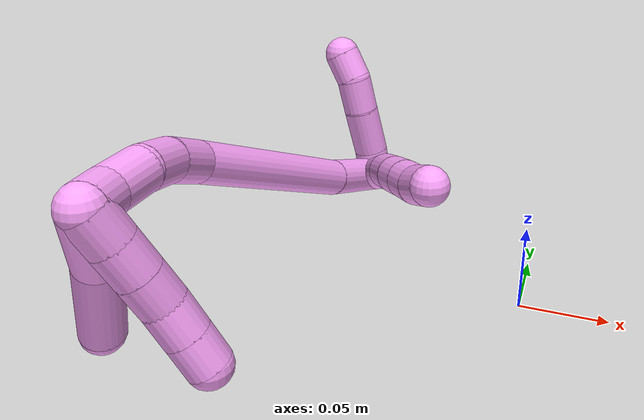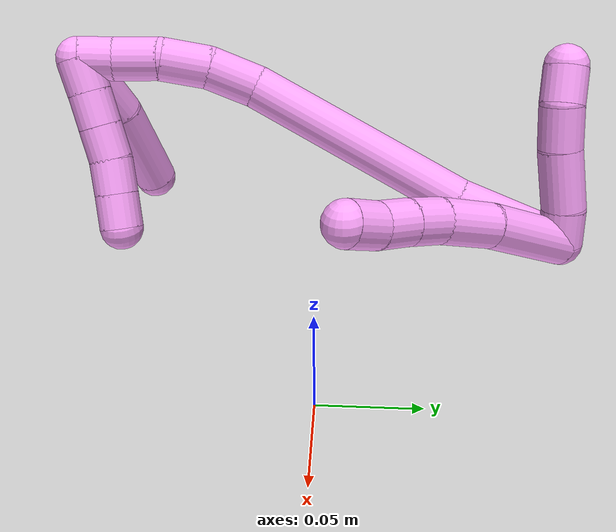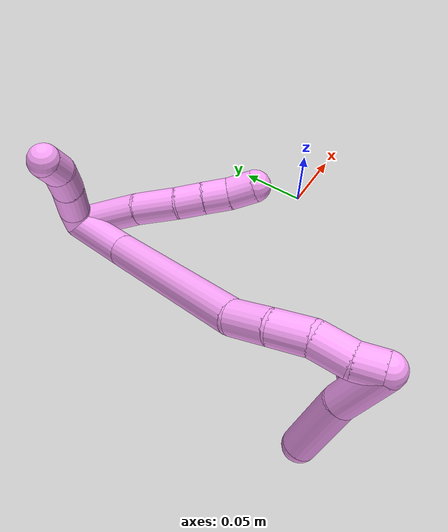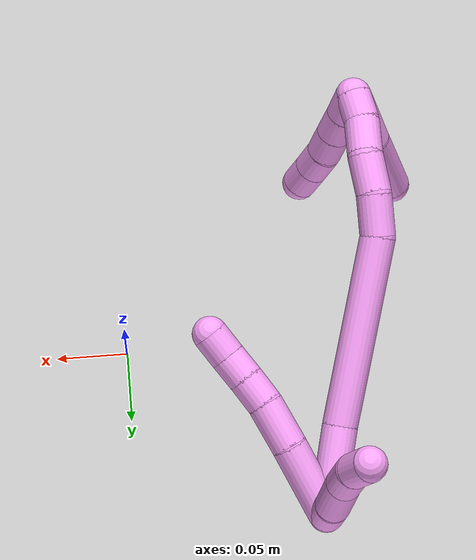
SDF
<sdf version="1.7">
 <world name="default">
  <model name="4">
   <static>0</static>
   <link name="4">
    <collision name="collision-cylinder-e_1_2_8">
     <pose>0.006279 -0.02337 0.012584 1.07684 0.232285 0.139143</pose>
     <geometry><cylinder><radius>0.0125</radius><length>0.05455</length></cylinder></geometry>
     <surface>
      <friction><ode><mu>1.16</mu><mu2>1.16</mu2><slip1>0</slip1><slip2>0</slip2></ode></friction>
      <contact><ode><kp>1e+06</kp><kd>1</kd><max_vel>0</max_vel><min_depth>0.001</min_depth></ode></contact>
     </surface>
    </collision>
    <visual name="visual-cylinder-e_1_2_8">
     <pose>0.006279 -0.02337 0.012584 1.07684 0.232285 0.139143</pose>
     <geometry><cylinder><radius>0.0125</radius><length>0.05455</length></cylinder></geometry>
     <material><ambient>1 0.65098 0.996078 1</ambient></material>
    </visual>
    <collision name="collision-cylinder-e_2_8_9">
     <pose>0.016654 -0.062086 0.031181 1.19739 0.243571 0.166609</pose>
     <geometry><cylinder><radius>0.0125</radius><length>0.033968</length></cylinder></geometry>
     <surface>
      <friction><ode><mu>1.16</mu><mu2>1.16</mu2><slip1>0</slip1><slip2>0</slip2></ode></friction>
      <contact><ode><kp>1e+06</kp><kd>1</kd><max_vel>0</max_vel><min_depth>0.001</min_depth></ode></contact>
     </surface>
    </collision>
    <visual name="visual-cylinder-e_2_8_9">
     <pose>0.016654 -0.062086 0.031181 1.19739 0.243571 0.166609</pose>
     <geometry><cylinder><radius>0.0125</radius><length>0.033968</length></cylinder></geometry>
     <material><ambient>1 0.65098 0.996078 1</ambient></material>
    </visual>
    <collision name="collision-cylinder-e_3_9_10">
     <pose>0.024607 -0.08686 0.040261 1.25619 0.371079 0.270942</pose>
     <geometry><cylinder><radius>0.0125</radius><length>0.021275</length></cylinder></geometry>
     <surface>
      <friction><ode><mu>1.16</mu><mu2>1.16</mu2><slip1>0</slip1><slip2>0</slip2></ode></friction>
      <contact><ode><kp>1e+06</kp><kd>1</kd><max_vel>0</max_vel><min_depth>0.001</min_depth></ode></contact>
     </surface>
    </collision>
    <visual name="visual-cylinder-e_3_9_10">
     <pose>0.024607 -0.08686 0.040261 1.25619 0.371079 0.270942</pose>
     <geometry><cylinder><radius>0.0125</radius><length>0.021275</length></cylinder></geometry>
     <material><ambient>1 0.65098 0.996078 1</ambient></material>
    </visual>
    <collision name="collision-cylinder-e_4_10_11">
     <pose>0.032291 -0.105216 0.045774 1.30352 0.39192 0.300632</pose>
     <geometry><cylinder><radius>0.0125</radius><length>0.020036</length></cylinder></geometry>
     <surface>
      <friction><ode><mu>1.16</mu><mu2>1.16</mu2><slip1>0</slip1><slip2>0</slip2></ode></friction>
      <contact><ode><kp>1e+06</kp><kd>1</kd><max_vel>0</max_vel><min_depth>0.001</min_depth></ode></contact>
     </surface>
    </collision>
    <visual name="visual-cylinder-e_4_10_11">
     <pose>0.032291 -0.105216 0.045774 1.30352 0.39192 0.300632</pose>
     <geometry><cylinder><radius>0.0125</radius><length>0.020036</length></cylinder></geometry>
     <material><ambient>1 0.65098 0.996078 1</ambient></material>
    </visual>
    <collision name="collision-cylinder-e_5_11_6">
     <pose>0.040013 -0.122572 0.052162 1.13313 0.396548 0.254237</pose>
     <geometry><cylinder><radius>0.0125</radius><length>0.020171</length></cylinder></geometry>
     <surface>
      <friction><ode><mu>1.16</mu><mu2>1.16</mu2><slip1>0</slip1><slip2>0</slip2></ode></friction>
      <contact><ode><kp>1e+06</kp><kd>1</kd><max_vel>0</max_vel><min_depth>0.001</min_depth></ode></contact>
     </surface>
    </collision>
    <visual name="visual-cylinder-e_5_11_6">
     <pose>0.040013 -0.122572 0.052162 1.13313 0.396548 0.254237</pose>
     <geometry><cylinder><radius>0.0125</radius><length>0.020171</length></cylinder></geometry>
     <material><ambient>1 0.65098 0.996078 1</ambient></material>
    </visual>
    <collision name="collision-cylinder-e_1_2_12">
     <pose>-0.001452 0.000924 0.010187 -0.090463 -0.141048 0.006395</pose>
     <geometry><cylinder><radius>0.0125</radius><length>0.020664</length></cylinder></geometry>
     <surface>
      <friction><ode><mu>1.16</mu><mu2>1.16</mu2><slip1>0</slip1><slip2>0</slip2></ode></friction>
      <contact><ode><kp>1e+06</kp><kd>1</kd><max_vel>0</max_vel><min_depth>0.001</min_depth></ode></contact>
     </surface>
    </collision>
    <visual name="visual-cylinder-e_1_2_12">
     <pose>-0.001452 0.000924 0.010187 -0.090463 -0.141048 0.006395</pose>
     <geometry><cylinder><radius>0.0125</radius><length>0.020664</length></cylinder></geometry>
     <material><ambient>1 0.65098 0.996078 1</ambient></material>
    </visual>
    <collision name="collision-cylinder-e_2_12_13">
     <pose>-0.006373 0.000906 0.037267 0.055709 -0.202171 -0.005652</pose>
     <geometry><cylinder><radius>0.0125</radius><length>0.034541</length></cylinder></geometry>
     <surface>
      <friction><ode><mu>1.16</mu><mu2>1.16</mu2><slip1>0</slip1><slip2>0</slip2></ode></friction>
      <contact><ode><kp>1e+06</kp><kd>1</kd><max_vel>0</max_vel><min_depth>0.001</min_depth></ode></contact>
     </surface>
    </collision>
    <visual name="visual-cylinder-e_2_12_13">
     <pose>-0.006373 0.000906 0.037267 0.055709 -0.202171 -0.005652</pose>
     <geometry><cylinder><radius>0.0125</radius><length>0.034541</length></cylinder></geometry>
     <material><ambient>1 0.65098 0.996078 1</ambient></material>
    </visual>
    <collision name="collision-cylinder-e_3_13_14">
     <pose>-0.012339 0.000562 0.066076 -0.050166 -0.206414 0.005197</pose>
     <geometry><cylinder><radius>0.0125</radius><length>0.02438</length></cylinder></geometry>
     <surface>
      <friction><ode><mu>1.16</mu><mu2>1.16</mu2><slip1>0</slip1><slip2>0</slip2></ode></friction>
      <contact><ode><kp>1e+06</kp><kd>1</kd><max_vel>0</max_vel><min_depth>0.001</min_depth></ode></contact>
     </surface>
    </collision>
    <visual name="visual-cylinder-e_3_13_14">
     <pose>-0.012339 0.000562 0.066076 -0.050166 -0.206414 0.005197</pose>
     <geometry><cylinder><radius>0.0125</radius><length>0.02438</length></cylinder></geometry>
     <material><ambient>1 0.65098 0.996078 1</ambient></material>
    </visual>
    <collision name="collision-cylinder-e_4_14_5">
     <pose>-0.019212 0.003497 0.086914 -0.256067 -0.442943 0.057958</pose>
     <geometry><cylinder><radius>0.0125</radius><length>0.020416</length></cylinder></geometry>
     <surface>
      <friction><ode><mu>1.16</mu><mu2>1.16</mu2><slip1>0</slip1><slip2>0</slip2></ode></friction>
      <contact><ode><kp>1e+06</kp><kd>1</kd><max_vel>0</max_vel><min_depth>0.001</min_depth></ode></contact>
     </surface>
    </collision>
    <visual name="visual-cylinder-e_4_14_5">
     <pose>-0.019212 0.003497 0.086914 -0.256067 -0.442943 0.057958</pose>
     <geometry><cylinder><radius>0.0125</radius><length>0.020416</length></cylinder></geometry>
     <material><ambient>1 0.65098 0.996078 1</ambient></material>
    </visual>
    <collision name="collision-cylinder-e_1_2_15">
     <pose>-0.01308 -0.026073 0.010687 1.18179 -0.434585 -0.294082</pose>
     <geometry><cylinder><radius>0.0125</radius><length>0.062132</length></cylinder></geometry>
     <surface>
      <friction><ode><mu>1.16</mu><mu2>1.16</mu2><slip1>0</slip1><slip2>0</slip2></ode></friction>
      <contact><ode><kp>1e+06</kp><kd>1</kd><max_vel>0</max_vel><min_depth>0.001</min_depth></ode></contact>
     </surface>
    </collision>
    <visual name="visual-cylinder-e_1_2_15">
     <pose>-0.01308 -0.026073 0.010687 1.18179 -0.434585 -0.294082</pose>
     <geometry><cylinder><radius>0.0125</radius><length>0.062132</length></cylinder></geometry>
     <material><ambient>1 0.65098 0.996078 1</ambient></material>
    </visual>
    <collision name="collision-cylinder-e_2_15_16">
     <pose>-0.055896 -0.104277 0.050851 1.05618 -0.460874 -0.272024</pose>
     <geometry><cylinder><radius>0.0125</radius><length>0.133728</length></cylinder></geometry>
     <surface>
      <friction><ode><mu>1.16</mu><mu2>1.16</mu2><slip1>0</slip1><slip2>0</slip2></ode></friction>
      <contact><ode><kp>1e+06</kp><kd>1</kd><max_vel>0</max_vel><min_depth>0.001</min_depth></ode></contact>
     </surface>
    </collision>
    <visual name="visual-cylinder-e_2_15_16">
     <pose>-0.055896 -0.104277 0.050851 1.05618 -0.460874 -0.272024</pose>
     <geometry><cylinder><radius>0.0125</radius><length>0.133728</length></cylinder></geometry>
     <material><ambient>1 0.65098 0.996078 1</ambient></material>
    </visual>
    <collision name="collision-cylinder-e_3_16_17">
     <pose>-0.088252 -0.16944 0.086752 1.11284 -0.178339 -0.111103</pose>
     <geometry><cylinder><radius>0.0125</radius><length>0.029527</length></cylinder></geometry>
     <surface>
      <friction><ode><mu>1.16</mu><mu2>1.16</mu2><slip1>0</slip1><slip2>0</slip2></ode></friction>
      <contact><ode><kp>1e+06</kp><kd>1</kd><max_vel>0</max_vel><min_depth>0.001</min_depth></ode></contact>
     </surface>
    </collision>
    <visual name="visual-cylinder-e_3_16_17">
     <pose>-0.088252 -0.16944 0.086752 1.11284 -0.178339 -0.111103</pose>
     <geometry><cylinder><radius>0.0125</radius><length>0.029527</length></cylinder></geometry>
     <material><ambient>1 0.65098 0.996078 1</ambient></material>
    </visual>
    <collision name="collision-cylinder-e_4_17_18">
     <pose>-0.092012 -0.195856 0.096881 1.30066 -0.081997 -0.062392</pose>
     <geometry><cylinder><radius>0.0125</radius><length>0.027867</length></cylinder></geometry>
     <surface>
      <friction><ode><mu>1.16</mu><mu2>1.16</mu2><slip1>0</slip1><slip2>0</slip2></ode></friction>
      <contact><ode><kp>1e+06</kp><kd>1</kd><max_vel>0</max_vel><min_depth>0.001</min_depth></ode></contact>
     </surface>
    </collision>
    <visual name="visual-cylinder-e_4_17_18">
     <pose>-0.092012 -0.195856 0.096881 1.30066 -0.081997 -0.062392</pose>
     <geometry><cylinder><radius>0.0125</radius><length>0.027867</length></cylinder></geometry>
     <material><ambient>1 0.65098 0.996078 1</ambient></material>
    </visual>
    <collision name="collision-cylinder-e_5_18_19">
     <pose>-0.096223 -0.222189 0.100954 1.54244 -0.232665 -0.226215</pose>
     <geometry><cylinder><radius>0.0125</radius><length>0.026628</length></cylinder></geometry>
     <surface>
      <friction><ode><mu>1.16</mu><mu2>1.16</mu2><slip1>0</slip1><slip2>0</slip2></ode></friction>
      <contact><ode><kp>1e+06</kp><kd>1</kd><max_vel>0</max_vel><min_depth>0.001</min_depth></ode></contact>
     </surface>
    </collision>
    <visual name="visual-cylinder-e_5_18_19">
     <pose>-0.096223 -0.222189 0.100954 1.54244 -0.232665 -0.226215</pose>
     <geometry><cylinder><radius>0.0125</radius><length>0.026628</length></cylinder></geometry>
     <material><ambient>1 0.65098 0.996078 1</ambient></material>
    </visual>
    <collision name="collision-cylinder-e_6_19_1">
     <pose>-0.099458 -0.245121 0.102549 1.44848 -0.016413 -0.014519</pose>
     <geometry><cylinder><radius>0.0125</radius><length>0.020118</length></cylinder></geometry>
     <surface>
      <friction><ode><mu>1.16</mu><mu2>1.16</mu2><slip1>0</slip1><slip2>0</slip2></ode></friction>
      <contact><ode><kp>1e+06</kp><kd>1</kd><max_vel>0</max_vel><min_depth>0.001</min_depth></ode></contact>
     </surface>
    </collision>
    <visual name="visual-cylinder-e_6_19_1">
     <pose>-0.099458 -0.245121 0.102549 1.44848 -0.016413 -0.014519</pose>
     <geometry><cylinder><radius>0.0125</radius><length>0.020118</length></cylinder></geometry>
     <material><ambient>1 0.65098 0.996078 1</ambient></material>
    </visual>
    <collision name="collision-cylinder-e_1_1_20">
     <pose>-0.104584 -0.245972 0.084278 -2.70358 -0.226472 0.944724</pose>
     <geometry><cylinder><radius>0.0125</radius><length>0.04419</length></cylinder></geometry>
     <surface>
      <friction><ode><mu>1.16</mu><mu2>1.16</mu2><slip1>0</slip1><slip2>0</slip2></ode></friction>
      <contact><ode><kp>1e+06</kp><kd>1</kd><max_vel>0</max_vel><min_depth>0.001</min_depth></ode></contact>
     </surface>
    </collision>
    <visual name="visual-cylinder-e_1_1_20">
     <pose>-0.104584 -0.245972 0.084278 -2.70358 -0.226472 0.944724</pose>
     <geometry><cylinder><radius>0.0125</radius><length>0.04419</length></cylinder></geometry>
     <material><ambient>1 0.65098 0.996078 1</ambient></material>
    </visual>
    <collision name="collision-cylinder-e_2_20_4">
     <pose>-0.116459 -0.229792 0.03868 -2.87784 -0.250364 1.51816</pose>
     <geometry><cylinder><radius>0.0125</radius><length>0.05581</length></cylinder></geometry>
     <surface>
      <friction><ode><mu>1.16</mu><mu2>1.16</mu2><slip1>0</slip1><slip2>0</slip2></ode></friction>
      <contact><ode><kp>1e+06</kp><kd>1</kd><max_vel>0</max_vel><min_depth>0.001</min_depth></ode></contact>
     </surface>
    </collision>
    <visual name="visual-cylinder-e_2_20_4">
     <pose>-0.116459 -0.229792 0.03868 -2.87784 -0.250364 1.51816</pose>
     <geometry><cylinder><radius>0.0125</radius><length>0.05581</length></cylinder></geometry>
     <material><ambient>1 0.65098 0.996078 1</ambient></material>
    </visual>
    <collision name="collision-cylinder-e_1_1_21">
     <pose>-0.095924 -0.25323 0.094676 -2.93852 0.378943 -2.16485</pose>
     <geometry><cylinder><radius>0.0125</radius><length>0.02</length></cylinder></geometry>
     <surface>
      <friction><ode><mu>1.16</mu><mu2>1.16</mu2><slip1>0</slip1><slip2>0</slip2></ode></friction>
      <contact><ode><kp>1e+06</kp><kd>1</kd><max_vel>0</max_vel><min_depth>0.001</min_depth></ode></contact>
     </surface>
    </collision>
    <visual name="visual-cylinder-e_1_1_21">
     <pose>-0.095924 -0.25323 0.094676 -2.93852 0.378943 -2.16485</pose>
     <geometry><cylinder><radius>0.0125</radius><length>0.02</length></cylinder></geometry>
     <material><ambient>1 0.65098 0.996078 1</ambient></material>
    </visual>
    <collision name="collision-cylinder-e_2_21_22">
     <pose>-0.088347 -0.249738 0.076502 -2.96508 0.39814 -2.31491</pose>
     <geometry><cylinder><radius>0.0125</radius><length>0.02</length></cylinder></geometry>
     <surface>
      <friction><ode><mu>1.16</mu><mu2>1.16</mu2><slip1>0</slip1><slip2>0</slip2></ode></friction>
      <contact><ode><kp>1e+06</kp><kd>1</kd><max_vel>0</max_vel><min_depth>0.001</min_depth></ode></contact>
     </surface>
    </collision>
    <visual name="visual-cylinder-e_2_21_22">
     <pose>-0.088347 -0.249738 0.076502 -2.96508 0.39814 -2.31491</pose>
     <geometry><cylinder><radius>0.0125</radius><length>0.02</length></cylinder></geometry>
     <material><ambient>1 0.65098 0.996078 1</ambient></material>
    </visual>
    <collision name="collision-cylinder-e_3_22_23">
     <pose>-0.080671 -0.246448 0.058329 -2.95998 0.389745 -2.27711</pose>
     <geometry><cylinder><radius>0.0125</radius><length>0.02</length></cylinder></geometry>
     <surface>
      <friction><ode><mu>1.16</mu><mu2>1.16</mu2><slip1>0</slip1><slip2>0</slip2></ode></friction>
      <contact><ode><kp>1e+06</kp><kd>1</kd><max_vel>0</max_vel><min_depth>0.001</min_depth></ode></contact>
     </surface>
    </collision>
    <visual name="visual-cylinder-e_3_22_23">
     <pose>-0.080671 -0.246448 0.058329 -2.95998 0.389745 -2.27711</pose>
     <geometry><cylinder><radius>0.0125</radius><length>0.02</length></cylinder></geometry>
     <material><ambient>1 0.65098 0.996078 1</ambient></material>
    </visual>
    <collision name="collision-cylinder-e_4_23_24">
     <pose>-0.07254 -0.244521 0.040222 -3.11308 0.447932 -3.0166</pose>
     <geometry><cylinder><radius>0.0125</radius><length>0.02</length></cylinder></geometry>
     <surface>
      <friction><ode><mu>1.16</mu><mu2>1.16</mu2><slip1>0</slip1><slip2>0</slip2></ode></friction>
      <contact><ode><kp>1e+06</kp><kd>1</kd><max_vel>0</max_vel><min_depth>0.001</min_depth></ode></contact>
     </surface>
    </collision>
    <visual name="visual-cylinder-e_4_23_24">
     <pose>-0.07254 -0.244521 0.040222 -3.11308 0.447932 -3.0166</pose>
     <geometry><cylinder><radius>0.0125</radius><length>0.02</length></cylinder></geometry>
     <material><ambient>1 0.65098 0.996078 1</ambient></material>
    </visual>
    <collision name="collision-cylinder-e_5_24_3">
     <pose>-0.063821 -0.244153 0.022227 -3.12925 0.454227 -3.08818</pose>
     <geometry><cylinder><radius>0.0125</radius><length>0.02</length></cylinder></geometry>
     <surface>
      <friction><ode><mu>1.16</mu><mu2>1.16</mu2><slip1>0</slip1><slip2>0</slip2></ode></friction>
      <contact><ode><kp>1e+06</kp><kd>1</kd><max_vel>0</max_vel><min_depth>0.001</min_depth></ode></contact>
     </surface>
    </collision>
    <visual name="visual-cylinder-e_5_24_3">
     <pose>-0.063821 -0.244153 0.022227 -3.12925 0.454227 -3.08818</pose>
     <geometry><cylinder><radius>0.0125</radius><length>0.02</length></cylinder></geometry>
     <material><ambient>1 0.65098 0.996078 1</ambient></material>
    </visual>
    <collision name="collision-sphere-3">
     <pose>-0.059434 -0.244042 0.013241 0 -0 0</pose>
     <geometry><sphere><radius>0.0125</radius></sphere></geometry>
     <surface>
      <friction><ode><mu>1.16</mu><mu2>1.16</mu2><slip1>0</slip1><slip2>0</slip2></ode></friction>
      <contact><ode><kp>1e+06</kp><kd>1</kd><max_vel>0</max_vel><min_depth>0.001</min_depth></ode></contact>
     </surface>
    </collision>
    <visual name="visual-sphere-3">
     <pose>-0.059434 -0.244042 0.013241 0 -0 0</pose>
     <geometry><sphere><radius>0.0125</radius></sphere></geometry>
     <material><ambient>1 0.65098 0.996078 1</ambient></material>
    </visual>
    <collision name="collision-sphere-24">
     <pose>-0.068209 -0.244264 0.031212 0 -0 0</pose>
     <geometry><sphere><radius>0.0125</radius></sphere></geometry>
     <surface>
      <friction><ode><mu>1.16</mu><mu2>1.16</mu2><slip1>0</slip1><slip2>0</slip2></ode></friction>
      <contact><ode><kp>1e+06</kp><kd>1</kd><max_vel>0</max_vel><min_depth>0.001</min_depth></ode></contact>
     </surface>
    </collision>
    <visual name="visual-sphere-24">
     <pose>-0.068209 -0.244264 0.031212 0 -0 0</pose>
     <geometry><sphere><radius>0.0125</radius></sphere></geometry>
     <material><ambient>1 0.65098 0.996078 1</ambient></material>
    </visual>
    <collision name="collision-sphere-23">
     <pose>-0.076871 -0.244778 0.049232 0 -0 0</pose>
     <geometry><sphere><radius>0.0125</radius></sphere></geometry>
     <surface>
      <friction><ode><mu>1.16</mu><mu2>1.16</mu2><slip1>0</slip1><slip2>0</slip2></ode></friction>
      <contact><ode><kp>1e+06</kp><kd>1</kd><max_vel>0</max_vel><min_depth>0.001</min_depth></ode></contact>
     </surface>
    </collision>
    <visual name="visual-sphere-23">
     <pose>-0.076871 -0.244778 0.049232 0 -0 0</pose>
     <geometry><sphere><radius>0.0125</radius></sphere></geometry>
     <material><ambient>1 0.65098 0.996078 1</ambient></material>
    </visual>
    <collision name="collision-sphere-22">
     <pose>-0.08447 -0.248119 0.067427 0 -0 0</pose>
     <geometry><sphere><radius>0.0125</radius></sphere></geometry>
     <surface>
      <friction><ode><mu>1.16</mu><mu2>1.16</mu2><slip1>0</slip1><slip2>0</slip2></ode></friction>
      <contact><ode><kp>1e+06</kp><kd>1</kd><max_vel>0</max_vel><min_depth>0.001</min_depth></ode></contact>
     </surface>
    </collision>
    <visual name="visual-sphere-22">
     <pose>-0.08447 -0.248119 0.067427 0 -0 0</pose>
     <geometry><sphere><radius>0.0125</radius></sphere></geometry>
     <material><ambient>1 0.65098 0.996078 1</ambient></material>
    </visual>
    <collision name="collision-sphere-21">
     <pose>-0.092224 -0.251356 0.085577 0 -0 0</pose>
     <geometry><sphere><radius>0.0125</radius></sphere></geometry>
     <surface>
      <friction><ode><mu>1.16</mu><mu2>1.16</mu2><slip1>0</slip1><slip2>0</slip2></ode></friction>
      <contact><ode><kp>1e+06</kp><kd>1</kd><max_vel>0</max_vel><min_depth>0.001</min_depth></ode></contact>
     </surface>
    </collision>
    <visual name="visual-sphere-21">
     <pose>-0.092224 -0.251356 0.085577 0 -0 0</pose>
     <geometry><sphere><radius>0.0125</radius></sphere></geometry>
     <material><ambient>1 0.65098 0.996078 1</ambient></material>
    </visual>
    <collision name="collision-sphere-4">
     <pose>-0.123373 -0.222744 0.012579 0 -0 0</pose>
     <geometry><sphere><radius>0.0125</radius></sphere></geometry>
     <surface>
      <friction><ode><mu>1.16</mu><mu2>1.16</mu2><slip1>0</slip1><slip2>0</slip2></ode></friction>
      <contact><ode><kp>1e+06</kp><kd>1</kd><max_vel>0</max_vel><min_depth>0.001</min_depth></ode></contact>
     </surface>
    </collision>
    <visual name="visual-sphere-4">
     <pose>-0.123373 -0.222744 0.012579 0 -0 0</pose>
     <geometry><sphere><radius>0.0125</radius></sphere></geometry>
     <material><ambient>1 0.65098 0.996078 1</ambient></material>
    </visual>
    <collision name="collision-sphere-20">
     <pose>-0.109545 -0.23684 0.06478 0 -0 0</pose>
     <geometry><sphere><radius>0.0125</radius></sphere></geometry>
     <surface>
      <friction><ode><mu>1.16</mu><mu2>1.16</mu2><slip1>0</slip1><slip2>0</slip2></ode></friction>
      <contact><ode><kp>1e+06</kp><kd>1</kd><max_vel>0</max_vel><min_depth>0.001</min_depth></ode></contact>
     </surface>
    </collision>
    <visual name="visual-sphere-20">
     <pose>-0.109545 -0.23684 0.06478 0 -0 0</pose>
     <geometry><sphere><radius>0.0125</radius></sphere></geometry>
     <material><ambient>1 0.65098 0.996078 1</ambient></material>
    </visual>
    <collision name="collision-sphere-6">
     <pose>0.043908 -0.130998 0.056105 0 -0 0</pose>
     <geometry><sphere><radius>0.0125</radius></sphere></geometry>
     <surface>
      <friction><ode><mu>1.16</mu><mu2>1.16</mu2><slip1>0</slip1><slip2>0</slip2></ode></friction>
      <contact><ode><kp>1e+06</kp><kd>1</kd><max_vel>0</max_vel><min_depth>0.001</min_depth></ode></contact>
     </surface>
    </collision>
    <visual name="visual-sphere-6">
     <pose>0.043908 -0.130998 0.056105 0 -0 0</pose>
     <geometry><sphere><radius>0.0125</radius></sphere></geometry>
     <material><ambient>1 0.65098 0.996078 1</ambient></material>
    </visual>
    <collision name="collision-sphere-11">
     <pose>0.036117 -0.114146 0.048219 0 -0 0</pose>
     <geometry><sphere><radius>0.0125</radius></sphere></geometry>
     <surface>
      <friction><ode><mu>1.16</mu><mu2>1.16</mu2><slip1>0</slip1><slip2>0</slip2></ode></friction>
      <contact><ode><kp>1e+06</kp><kd>1</kd><max_vel>0</max_vel><min_depth>0.001</min_depth></ode></contact>
     </surface>
    </collision>
    <visual name="visual-sphere-11">
     <pose>0.036117 -0.114146 0.048219 0 -0 0</pose>
     <geometry><sphere><radius>0.0125</radius></sphere></geometry>
     <material><ambient>1 0.65098 0.996078 1</ambient></material>
    </visual>
    <collision name="collision-sphere-10">
     <pose>0.028464 -0.096287 0.043329 0 -0 0</pose>
     <geometry><sphere><radius>0.0125</radius></sphere></geometry>
     <surface>
      <friction><ode><mu>1.16</mu><mu2>1.16</mu2><slip1>0</slip1><slip2>0</slip2></ode></friction>
      <contact><ode><kp>1e+06</kp><kd>1</kd><max_vel>0</max_vel><min_depth>0.001</min_depth></ode></contact>
     </surface>
    </collision>
    <visual name="visual-sphere-10">
     <pose>0.028464 -0.096287 0.043329 0 -0 0</pose>
     <geometry><sphere><radius>0.0125</radius></sphere></geometry>
     <material><ambient>1 0.65098 0.996078 1</ambient></material>
    </visual>
    <collision name="collision-sphere-9">
     <pose>0.02075 -0.077433 0.037194 0 -0 0</pose>
     <geometry><sphere><radius>0.0125</radius></sphere></geometry>
     <surface>
      <friction><ode><mu>1.16</mu><mu2>1.16</mu2><slip1>0</slip1><slip2>0</slip2></ode></friction>
      <contact><ode><kp>1e+06</kp><kd>1</kd><max_vel>0</max_vel><min_depth>0.001</min_depth></ode></contact>
     </surface>
    </collision>
    <visual name="visual-sphere-9">
     <pose>0.02075 -0.077433 0.037194 0 -0 0</pose>
     <geometry><sphere><radius>0.0125</radius></sphere></geometry>
     <material><ambient>1 0.65098 0.996078 1</ambient></material>
    </visual>
    <collision name="collision-sphere-2">
     <geometry><sphere><radius>0.0125</radius></sphere></geometry>
     <surface>
      <friction><ode><mu>1.16</mu><mu2>1.16</mu2><slip1>0</slip1><slip2>0</slip2></ode></friction>
      <contact><ode><kp>1e+06</kp><kd>1</kd><max_vel>0</max_vel><min_depth>0.001</min_depth></ode></contact>
     </surface>
    </collision>
    <visual name="visual-sphere-2">
     <geometry><sphere><radius>0.0125</radius></sphere></geometry>
     <material><ambient>1 0.65098 0.996078 1</ambient></material>
    </visual>
    <collision name="collision-sphere-19">
     <pose>-0.099293 -0.235139 0.101322 0 -0 0</pose>
     <geometry><sphere><radius>0.0125</radius></sphere></geometry>
     <surface>
      <friction><ode><mu>1.16</mu><mu2>1.16</mu2><slip1>0</slip1><slip2>0</slip2></ode></friction>
      <contact><ode><kp>1e+06</kp><kd>1</kd><max_vel>0</max_vel><min_depth>0.001</min_depth></ode></contact>
     </surface>
    </collision>
    <visual name="visual-sphere-19">
     <pose>-0.099293 -0.235139 0.101322 0 -0 0</pose>
     <geometry><sphere><radius>0.0125</radius></sphere></geometry>
     <material><ambient>1 0.65098 0.996078 1</ambient></material>
    </visual>
    <collision name="collision-sphere-8">
     <pose>0.012558 -0.04674 0.025168 0 -0 0</pose>
     <geometry><sphere><radius>0.0125</radius></sphere></geometry>
     <surface>
      <friction><ode><mu>1.16</mu><mu2>1.16</mu2><slip1>0</slip1><slip2>0</slip2></ode></friction>
      <contact><ode><kp>1e+06</kp><kd>1</kd><max_vel>0</max_vel><min_depth>0.001</min_depth></ode></contact>
     </surface>
    </collision>
    <visual name="visual-sphere-8">
     <pose>0.012558 -0.04674 0.025168 0 -0 0</pose>
     <geometry><sphere><radius>0.0125</radius></sphere></geometry>
     <material><ambient>1 0.65098 0.996078 1</ambient></material>
    </visual>
    <collision name="collision-sphere-12">
     <pose>-0.002905 0.001848 0.020375 0 -0 0</pose>
     <geometry><sphere><radius>0.0125</radius></sphere></geometry>
     <surface>
      <friction><ode><mu>1.16</mu><mu2>1.16</mu2><slip1>0</slip1><slip2>0</slip2></ode></friction>
      <contact><ode><kp>1e+06</kp><kd>1</kd><max_vel>0</max_vel><min_depth>0.001</min_depth></ode></contact>
     </surface>
    </collision>
    <visual name="visual-sphere-12">
     <pose>-0.002905 0.001848 0.020375 0 -0 0</pose>
     <geometry><sphere><radius>0.0125</radius></sphere></geometry>
     <material><ambient>1 0.65098 0.996078 1</ambient></material>
    </visual>
    <collision name="collision-sphere-13">
     <pose>-0.009841 -3.6e-05 0.05416 0 -0 0</pose>
     <geometry><sphere><radius>0.0125</radius></sphere></geometry>
     <surface>
      <friction><ode><mu>1.16</mu><mu2>1.16</mu2><slip1>0</slip1><slip2>0</slip2></ode></friction>
      <contact><ode><kp>1e+06</kp><kd>1</kd><max_vel>0</max_vel><min_depth>0.001</min_depth></ode></contact>
     </surface>
    </collision>
    <visual name="visual-sphere-13">
     <pose>-0.009841 -3.6e-05 0.05416 0 -0 0</pose>
     <geometry><sphere><radius>0.0125</radius></sphere></geometry>
     <material><ambient>1 0.65098 0.996078 1</ambient></material>
    </visual>
    <collision name="collision-sphere-14">
     <pose>-0.014837 0.001161 0.077992 0 -0 0</pose>
     <geometry><sphere><radius>0.0125</radius></sphere></geometry>
     <surface>
      <friction><ode><mu>1.16</mu><mu2>1.16</mu2><slip1>0</slip1><slip2>0</slip2></ode></friction>
      <contact><ode><kp>1e+06</kp><kd>1</kd><max_vel>0</max_vel><min_depth>0.001</min_depth></ode></contact>
     </surface>
    </collision>
    <visual name="visual-sphere-14">
     <pose>-0.014837 0.001161 0.077992 0 -0 0</pose>
     <geometry><sphere><radius>0.0125</radius></sphere></geometry>
     <material><ambient>1 0.65098 0.996078 1</ambient></material>
    </visual>
    <collision name="collision-sphere-5">
     <pose>-0.023587 0.005833 0.095836 0 -0 0</pose>
     <geometry><sphere><radius>0.0125</radius></sphere></geometry>
     <surface>
      <friction><ode><mu>1.16</mu><mu2>1.16</mu2><slip1>0</slip1><slip2>0</slip2></ode></friction>
      <contact><ode><kp>1e+06</kp><kd>1</kd><max_vel>0</max_vel><min_depth>0.001</min_depth></ode></contact>
     </surface>
    </collision>
    <visual name="visual-sphere-5">
     <pose>-0.023587 0.005833 0.095836 0 -0 0</pose>
     <geometry><sphere><radius>0.0125</radius></sphere></geometry>
     <material><ambient>1 0.65098 0.996078 1</ambient></material>
    </visual>
    <collision name="collision-sphere-15">
     <pose>-0.02616 -0.052146 0.021374 0 -0 0</pose>
     <geometry><sphere><radius>0.0125</radius></sphere></geometry>
     <surface>
      <friction><ode><mu>1.16</mu><mu2>1.16</mu2><slip1>0</slip1><slip2>0</slip2></ode></friction>
      <contact><ode><kp>1e+06</kp><kd>1</kd><max_vel>0</max_vel><min_depth>0.001</min_depth></ode></contact>
     </surface>
    </collision>
    <visual name="visual-sphere-15">
     <pose>-0.02616 -0.052146 0.021374 0 -0 0</pose>
     <geometry><sphere><radius>0.0125</radius></sphere></geometry>
     <material><ambient>1 0.65098 0.996078 1</ambient></material>
    </visual>
    <collision name="collision-sphere-16">
     <pose>-0.085633 -0.156408 0.080328 0 -0 0</pose>
     <geometry><sphere><radius>0.0125</radius></sphere></geometry>
     <surface>
      <friction><ode><mu>1.16</mu><mu2>1.16</mu2><slip1>0</slip1><slip2>0</slip2></ode></friction>
      <contact><ode><kp>1e+06</kp><kd>1</kd><max_vel>0</max_vel><min_depth>0.001</min_depth></ode></contact>
     </surface>
    </collision>
    <visual name="visual-sphere-16">
     <pose>-0.085633 -0.156408 0.080328 0 -0 0</pose>
     <geometry><sphere><radius>0.0125</radius></sphere></geometry>
     <material><ambient>1 0.65098 0.996078 1</ambient></material>
    </visual>
    <collision name="collision-sphere-17">
     <pose>-0.090871 -0.182472 0.093175 0 -0 0</pose>
     <geometry><sphere><radius>0.0125</radius></sphere></geometry>
     <surface>
      <friction><ode><mu>1.16</mu><mu2>1.16</mu2><slip1>0</slip1><slip2>0</slip2></ode></friction>
      <contact><ode><kp>1e+06</kp><kd>1</kd><max_vel>0</max_vel><min_depth>0.001</min_depth></ode></contact>
     </surface>
    </collision>
    <visual name="visual-sphere-17">
     <pose>-0.090871 -0.182472 0.093175 0 -0 0</pose>
     <geometry><sphere><radius>0.0125</radius></sphere></geometry>
     <material><ambient>1 0.65098 0.996078 1</ambient></material>
    </visual>
    <collision name="collision-sphere-18">
     <pose>-0.093153 -0.209239 0.100587 0 -0 0</pose>
     <geometry><sphere><radius>0.0125</radius></sphere></geometry>
     <surface>
      <friction><ode><mu>1.16</mu><mu2>1.16</mu2><slip1>0</slip1><slip2>0</slip2></ode></friction>
      <contact><ode><kp>1e+06</kp><kd>1</kd><max_vel>0</max_vel><min_depth>0.001</min_depth></ode></contact>
     </surface>
    </collision>
    <visual name="visual-sphere-18">
     <pose>-0.093153 -0.209239 0.100587 0 -0 0</pose>
     <geometry><sphere><radius>0.0125</radius></sphere></geometry>
     <material><ambient>1 0.65098 0.996078 1</ambient></material>
    </visual>
    <collision name="collision-sphere-1">
     <pose>-0.099623 -0.255104 0.103776 0 -0 0</pose>
     <geometry><sphere><radius>0.0125</radius></sphere></geometry>
     <surface>
      <friction><ode><mu>1.16</mu><mu2>1.16</mu2><slip1>0</slip1><slip2>0</slip2></ode></friction>
      <contact><ode><kp>1e+06</kp><kd>1</kd><max_vel>0</max_vel><min_depth>0.001</min_depth></ode></contact>
     </surface>
    </collision>
    <visual name="visual-sphere-1">
     <pose>-0.099623 -0.255104 0.103776 0 -0 0</pose>
     <geometry><sphere><radius>0.0125</radius></sphere></geometry>
     <material><ambient>1 0.65098 0.996078 1</ambient></material>
    </visual>
    <inertial>
     <pose>-0.046967 -0.126675 0.051538 0 -0 0</pose>
     <mass>0.75</mass>
     <inertia>
      <ixx>0.000203</ixx>
      <ixy>0</ixy>
      <ixz>0</ixz>
      <iyy>9.6e-05</iyy>
      <iyz>0</iyz>
      <izz>0.000307</izz>
     </inertia>
    </inertial>
   </link>
   <pose>-0.130326 0.132762 0.011683 0.04606 -0.020195 0.225324</pose>
  </model>
 </world>
</sdf>
